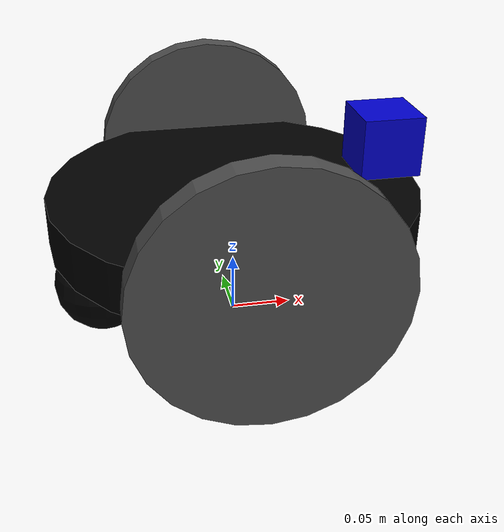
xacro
<?xml version="1.0"?>
<robot name="differential_wheeled_robot" xmlns:xacro="http://www.ros.org/wiki/xacro">
    <xacro:include filename="$(find environment)/src/ugv_forward_continuous/urdf/lidar_gazebo.xacro" />
    <xacro:include filename="$(find environment)/src/ugv_forward_continuous/urdf/wheel.urdf.xacro" />

    <material name="Black"><color rgba="0.0 0.0 0.0 1.0"/></material>       <!-- 定义黑色 -->
    <material name="Red"><color rgba="0.8 0.0 0.0 1.0"/></material>         <!-- 定义红色 -->
    <material name="White"><color rgba="1.0 1.0 1.0 1.0"/></material>       <!-- 定义白色 -->
    <material name="Blue"><color rgba="0.0 0.0 0.8 1.0"/></material>        <!-- 定义蓝色 -->

    <!-- xacro:PROPERTY LIST -->
    <xacro:property name="M_PI" value="3.1415926535897931" />
    <xacro:property name="M_PI_2" value="1.570796327" />
    <xacro:property name="DEG_TO_RAD" value="0.017453293" />

    <!-- Main body radius and height -->
    <!-- Main Body Cylinder base   -->
    <xacro:property name="base_height" value="0.04" />
    <xacro:property name="base_radius" value="0.15" />
    <xacro:property name="base_mass" value="1.0" /> <!-- in kg-->

    <!-- caster wheel radius and height -->
    <!-- caster wheel mass -->
    <xacro:property name="caster_f_height" value="0.025" />
    <xacro:property name="caster_f_radius" value="0.04" />
    <xacro:property name="caster_f_mass" value="0.25" /> <!-- in kg-->

    <!-- caster wheel radius and height -->
    <!-- caster wheel mass -->
    <xacro:property name="caster_b_height" value="0.025" />
    <xacro:property name="caster_b_radius" value="0.04" />
    <xacro:property name="caster_b_mass" value="0.25" /> <!-- in kg-->

    <!-- Wheels -->

    <xacro:property name="wheel_mass" value="0.5" /> --> <!-- in kg-->

    <xacro:property name="base_x_origin_to_wheel_origin" value="0.25" />
    <xacro:property name="base_y_origin_to_wheel_origin" value="${0.3 - 0.02}" />
    <xacro:property name="base_z_origin_to_wheel_origin" value="0.0" />

    <!-- Hokuyo Laser scanner -->
    <xacro:property name="hokuyo_size" value="0.05" />

    <!-- Macro for calculating inertia of cylinder -->
    <xacro:macro name="cylinder_inertia" params="m r h">
        <inertia  ixx="${m*(3*r*r+h*h)/12}" ixy = "0" ixz = "0"
                  iyy="${m*(3*r*r+h*h)/12}" iyz = "0"
                  izz="${m*r*r/2}" />
    </xacro:macro>

  <!-- BASE-FOOTPRINT -->
  <!-- base_footprint is a fictitious link(frame) that is on the ground right below base_link origin -->
    <link name="base_footprint">
        <inertial>
            <mass value="0.0001" />
            <origin xyz="0 0 0" />
            <inertia ixx="0.0001" ixy="0.0" ixz="0.0" iyy="0.0001" iyz="0.0" izz="0.0001" />
        </inertial>
        <visual>
            <origin xyz="0 0 0" rpy="0 0 0" />
            <geometry>
                <box size="0.001 0.001 0.001" />
            </geometry>
        </visual>
    </link>

    <gazebo reference="base_footprint">
        <turnGravityOff>false</turnGravityOff>
    </gazebo>

    <joint name="base_footprint_joint" type="fixed">
        <origin xyz="0 0 ${wheel_radius - base_z_origin_to_wheel_origin}" rpy="0 0 0" />    <!-- TODO 机器人初始位置 TODO -->
        <parent link="base_footprint"/>
        <child link="base_link" />
    </joint>

  <!-- BASE-LINK -->
  <!--Actual body/chassis of the robot-->
    <link name="base_link">
        <inertial>
            <mass value="${base_mass}" />
            <origin xyz="0 0 0" />
            <!--The 3x3 rotational inertia matrix. -->
            <xacro:cylinder_inertia  m="${base_mass}" r="${base_radius}" h="${base_height}" />
            <inertia ixx="0.0001" ixy="0.0" ixz="0.0" iyy="0.0001" iyz="0.0" izz="0.0001" />
        </inertial>

        <visual>
            <origin xyz="0 0 0" rpy="0 0 0" />
            <geometry>
                <cylinder length="${base_height}" radius="${base_radius}" />
            </geometry>
            <material name="Black" />
        </visual>

        <collision name="yyf">
            <origin xyz="0 0 0" rpy="0 0 0 " />
            <geometry>
                <cylinder length="${base_height}" radius="${base_radius}" />
            </geometry>
        </collision>
    </link>

    <gazebo reference="base_link">
        <material>Gazebo/Darkgray</material>
        <turnGravityOff>false</turnGravityOff>
        <sensor name="contacts" type="contact">
            <contact>
                <collision>base_footprint_fixed_joint_lump__yyf_collision</collision>
            </contact>
            <plugin name="gazebo_ros_bumper_controller" filename="libgazebo_ros_bumper.so">
                <alwaysOn>true</alwaysOn>
                <updateRate>10</updateRate>
                <frameName>base_link</frameName>
                <topicName>/robot_bumper</topicName>
                <visualize>true</visualize>
            </plugin>
        </sensor>
    </gazebo>

    <!--Caster front  -->
    <link name="caster_front_link">
        <visual>
            <origin xyz="0 0.0 0" rpy="${M_PI/2} 0 0" />
            <geometry>
                <sphere radius="${caster_f_radius}" />
            </geometry>
            <material name="Black" />
        </visual>

        <collision>
            <geometry>
                <sphere radius="${caster_f_radius}" />
            </geometry>
            <origin xyz="0 0.0 0" rpy="${M_PI/2} 0 0" />
        </collision>

        <inertial>
            <mass value="${caster_f_mass}" />
            <origin xyz="0 0 0" />
            <inertia ixx="0.001" ixy="0.0" ixz="0.0" iyy="0.001" iyz="0.0" izz="0.001" />
        </inertial>
    </link>

    <joint name="caster_front_joint" type="fixed">
        <parent link="base_link"/>
        <child link="caster_front_link"/>
        <origin xyz="${base_radius - caster_f_radius} 0.0 ${-caster_f_radius - base_height/2}" rpy="${-M_PI/2} 0 0"/>
    </joint>

    <gazebo reference="caster_front_link">
        <mu1 value="0"/>
        <mu2 value="0"/>
        <turnGravityOff>false</turnGravityOff>
    </gazebo>

<!--    &lt;!&ndash;Caster back  &ndash;&gt;-->
    <link name="caster_back_link">
        <visual>
            <origin xyz="0.0 0.0 0 " rpy="${M_PI/2} 0 0" />
            <geometry>
                <sphere radius="${caster_b_radius}" />
            </geometry>
            <material name="Black" />
        </visual>
        <collision>
            <geometry>
                <sphere radius="${caster_b_radius}" />
            </geometry>
            <origin xyz="0 0.0 0 " rpy="${M_PI/2} 0 0" />
        </collision>
        <inertial>
            <mass value="${caster_b_mass}" />
            <origin xyz="0 0 0" />
            <inertia ixx="0.001" ixy="0.0" ixz="0.0"
             iyy="0.001" iyz="0.0"
             izz="0.001" />
        </inertial>
    </link>

    <joint name="caster_back_joint" type="fixed">
        <parent link="base_link"/>
        <child link="caster_back_link"/>
        <origin xyz="${caster_f_radius - base_radius} 0.0 ${-caster_b_radius - base_height/2}" rpy="${-M_PI/2} 0 0"/>
    </joint>

    <gazebo reference="caster_back_link">
        <mu1 value="0"/>
        <mu2 value="0"/>
        <turnGravityOff>false</turnGravityOff>
    </gazebo>

<!-- Wheel Definitions -->

    <xacro:wheel fb="front" lr="right" parent="base_link" translateX="0" translateY="-0.5" flipY="-1"/>
    <xacro:wheel fb="front" lr="left" parent="base_link" translateX="0" translateY="0.5" flipY="-1"/>

    <!-- SENSORS -->
    <!-- hokuyo -->
    <link name="hokuyo_link">
        <visual>
            <origin xyz="0 0 0" rpy="0 0 0" />
            <geometry>
                <box size="${hokuyo_size} ${hokuyo_size} ${hokuyo_size}"/>
            </geometry>
            <material name="Blue" />
        </visual>
    </link>

    <joint name="hokuyo_joint" type="fixed">
        <origin xyz="${base_radius - hokuyo_size/2} 0 ${base_height + hokuyo_size/5}" rpy="0 0 0" />
        <parent link="base_link"/>
        <child link="hokuyo_link" />
    </joint>

    <gazebo reference="hokuyo_link">
        <material>Gazebo/Blue</material>
        <turnGravityOff>false</turnGravityOff>
        <sensor type="ray" name="head_hokuyo_sensor">
            <pose>${hokuyo_size/2} 0 0 0 0 0</pose>
            <visualize>true</visualize>
            <update_rate>100</update_rate>
            <ray>
                <scan>
                    <horizontal>
                    <samples>37</samples>
                    <resolution>1</resolution>
                    <min_angle>-1.5707963267948966</min_angle>
                    <max_angle>1.5707963267948966</max_angle>
                    </horizontal>
                </scan>
                <range>
                    <min>0.00</min>
                    <max>2.0</max>
                    <resolution>0.001</resolution>
                </range>
            </ray>
            <plugin name="gazebo_ros_head_hokuyo_controller" filename="libgazebo_ros_laser.so">
            <topicName>/scan</topicName>
            <frameName>hokuyo_link</frameName>
            </plugin>
        </sensor>
    </gazebo>
    <!-- SENSORS -->

  <!-- Differential drive controller  -->
    <gazebo>
        <plugin name="differential_drive_controller" filename="libgazebo_ros_diff_drive.so">
            <rosDebugLevel>Debug</rosDebugLevel>
            <publishWheelTF>false</publishWheelTF>
            <robotNamespace>/</robotNamespace>
            <publishTf>1</publishTf>
            <publishWheelJointState>false</publishWheelJointState>
            <alwaysOn>true</alwaysOn>
            <updateRate>100.0</updateRate>
            <leftJoint>front_left_wheel_joint</leftJoint>
            <rightJoint>front_right_wheel_joint</rightJoint>
            <wheelSeparation>${2*base_radius}</wheelSeparation>
            <wheelDiameter>${2*wheel_radius}</wheelDiameter>
            <broadcastTF>1</broadcastTF>
            <wheelTorque>30</wheelTorque>
            <wheelAcceleration>30</wheelAcceleration>
            <commandTopic>cmd_vel</commandTopic>
            <odometryFrame>odom</odometryFrame>
            <odometryTopic>odom</odometryTopic>
            <robotBaseFrame>base_footprint</robotBaseFrame>
        </plugin>
    </gazebo>
</robot>

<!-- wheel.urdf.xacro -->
<robot name="wheel" xmlns:xacro="http://www.ros.org/xacro">

  <!-- Wheels -->
    <xacro:property name="wheel_radius" value="0.1" />
    <xacro:property name="wheel_height" value="0.02" />
    <xacro:property name="wheel_mass" value="1.5" /> <!-- in kg-->

    <xacro:property name="base_x_origin_to_wheel_origin" value="0.25" />
    <xacro:property name="base_y_origin_to_wheel_origin" value="0.3" />
    <xacro:property name="base_z_origin_to_wheel_origin" value="0.0" />

    <xacro:macro name="cylinder_inertia" params="m r h">
        <inertia  ixx="${m*(3*r*r+h*h)/12}" ixy = "0" ixz = "0" iyy="${m*(3*r*r+h*h)/12}" iyz = "0" izz="${m*r*r/2}" />
    </xacro:macro>

    <xacro:macro name="wheel" params="fb lr parent translateX translateY flipY"> <!--fb : front, back ; lr: left, right -->
        <link name="${fb}_${lr}_wheel">
          <visual>
            <origin xyz="0 0 0" rpy="${flipY*M_PI/2} 0  0 " />
            <geometry>
              <cylinder length="${wheel_height}" radius="${wheel_radius}" />
            </geometry>
            <material name="DarkGray" />
          </visual>
          <collision>
            <origin xyz="0 0 0" rpy="${flipY*M_PI/2} 0 0 " />
            <geometry>
              <cylinder length="${wheel_height}" radius="${wheel_radius}" />
            </geometry>
          </collision>
          <inertial>
            <mass value="${wheel_mass}" />
            <origin xyz="0 0 0" />
            <xacro:cylinder_inertia  m="${wheel_mass}" r="${wheel_radius}" h="${wheel_height}" />
          </inertial>
        </link>

        <gazebo reference="${fb}_${lr}_wheel">
          <mu1 value="1.0"/>
          <mu2 value="1.0"/>
          <kp  value="10000000.0" />
          <kd  value="1.0" />
          <fdir1 value="1 0 0"/>
          <material>Gazebo/Grey</material>
          <turnGravityOff>false</turnGravityOff>
        </gazebo>

        <joint name="${fb}_${lr}_wheel_joint" type="continuous">
            <parent link="${parent}"/>
            <child link="${fb}_${lr}_wheel"/>
            <origin xyz="${translateX * base_x_origin_to_wheel_origin} ${translateY * base_y_origin_to_wheel_origin} ${base_z_origin_to_wheel_origin}" rpy="0 0 0" />
            <axis xyz="0 1 0" rpy="0  0" />
            <limit effort="100" velocity="100"/>
            <joint_properties damping="0.0" friction="0.0"/>
        </joint>

        <!-- Transmission is important to link the joints and the controller -->
        <transmission name="${fb}_${lr}_wheel_joint_trans">
            <type>transmission_interface/SimpleTransmission</type>
            <joint name="${fb}_${lr}_wheel_joint" />
            <actuator name="${fb}_${lr}_wheel_joint_motor">
                <hardwareInterface>EffortJointInterface</hardwareInterface>
                <mechanicalReduction>1</mechanicalReduction>
            </actuator>
        </transmission>

    </xacro:macro>
</robot>
